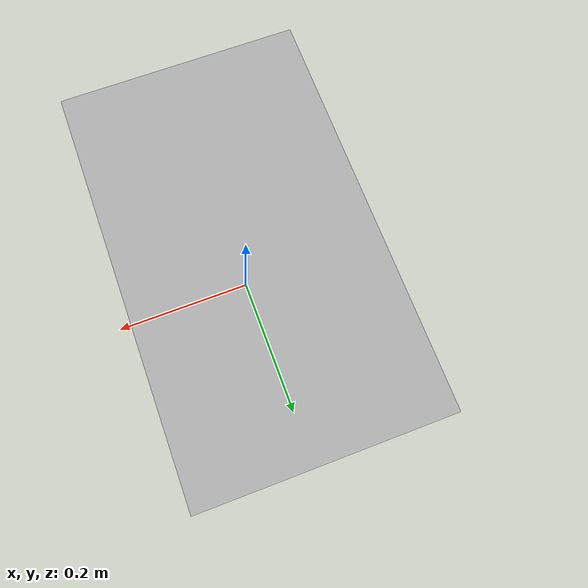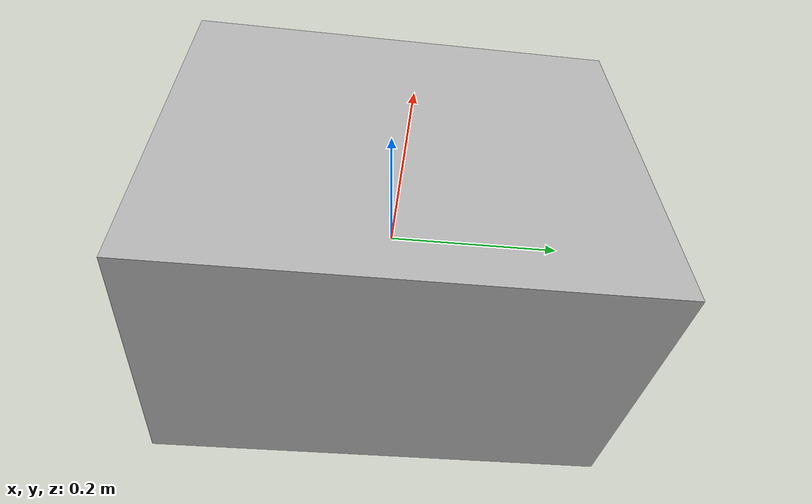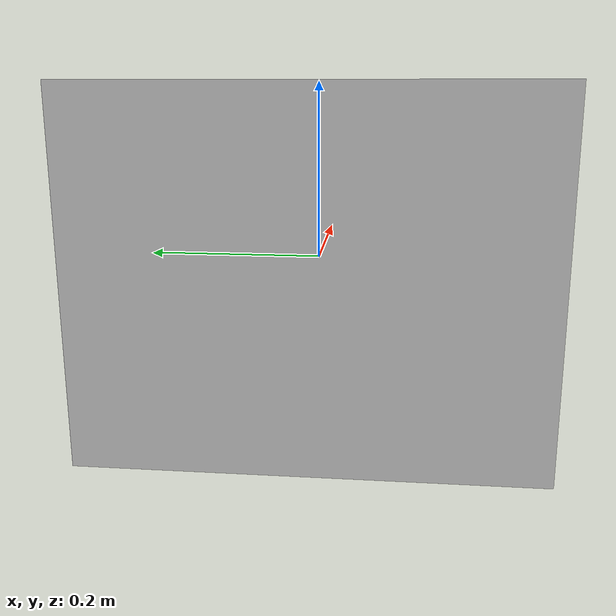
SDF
<?xml version="1.0"?>
<!-- Componente "centro_cnc" de la biblioteca del contrato 2.0. Origen = centro geométrico. -->
<sdf version="1.9"><model name='centro_cnc'><static>true</static><link name='link'><collision name='c'><geometry><box><size>0.3 0.5 0.4</size></box></geometry></collision><visual name='v'><geometry><box><size>0.3 0.5 0.4</size></box></geometry><material><ambient>0.7 0.7 0.7 1</ambient><diffuse>0.7 0.7 0.7 1</diffuse></material></visual></link></model></sdf>
